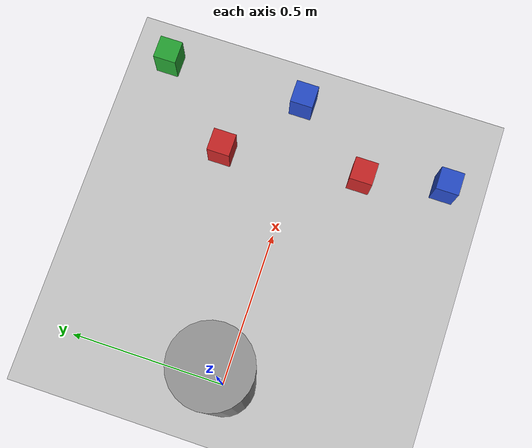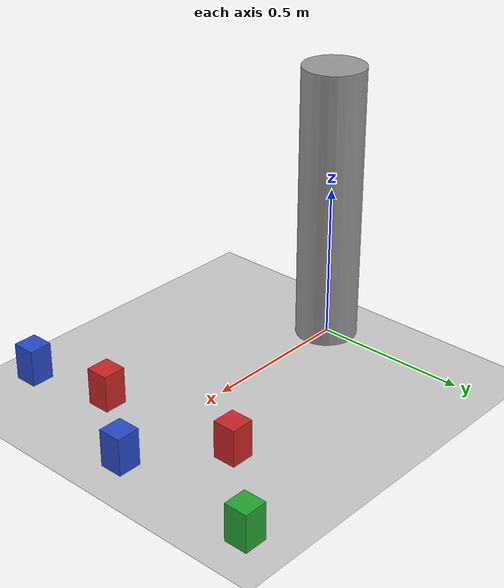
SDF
<sdf version="1.6">
 <world name="default">
  <light name="sun" type="directional">
   <pose>0 0 10 0 -0 0</pose>
   <diffuse>0.8 0.8 0.8 1</diffuse>
   <specular>0.1 0.1 0.1 1</specular>
   <attenuation>
    <range>1000</range>
    <constant>0.9</constant>
    <linear>0.01</linear>
    <quadratic>0.001</quadratic>
   </attenuation>
   <direction>-0.5 0.5 -1</direction>
  </light>
  <model name="ground_plane">
   <static>1</static>
   <link name="link">
    <collision name="collision">
     <geometry><plane><normal>0 0 1</normal><size>100 100</size></plane></geometry>
     <surface><friction><ode><mu>100</mu><mu2>50</mu2></ode></friction></surface>
    </collision>
    <visual name="visual">
     <cast_shadows>0</cast_shadows>
     <geometry><plane><normal>0 0 1</normal><size>100 100</size></plane></geometry>
     <material>
      <script><uri>file://media/materials/scripts/gazebo.material</uri><name>Gazebo/Grey</name></script>
     </material>
    </visual>
   </link>
  </model>
  <gravity>0 0 -9.8</gravity>
  <magnetic_field>6e-06 2.3e-05 -4.2e-05</magnetic_field>
  <atmosphere type="adiabatic"/>
  <physics name="default_physics" default="0" type="ode">
   <max_step_size>0.001</max_step_size>
   <real_time_factor>1</real_time_factor>
   <real_time_update_rate>1000</real_time_update_rate>
  </physics>
  <scene><ambient>0.4 0.4 0.4 1</ambient><background>0.7 0.7 0.7 1</background><shadows>1</shadows></scene>
  <spherical_coordinates>
   <surface_model>EARTH_WGS84</surface_model>
   <latitude_deg>0</latitude_deg>
   <longitude_deg>0</longitude_deg>
   <elevation>0</elevation>
   <heading_deg>0</heading_deg>
  </spherical_coordinates>
  <model name="half_cylinder_0">
   <link name="link">
    <inertial>
     <mass>1</mass>
     <inertia><ixx>0.145833</ixx><ixy>0</ixy><ixz>0</ixz><iyy>0.145833</iyy><iyz>0</iyz><izz>0.125</izz></inertia>
    </inertial>
    <visual name="visual">
     <geometry><cylinder><radius>0.1</radius><length>0.9</length></cylinder></geometry>
     <material>
      <script><name>Gazebo/Grey</name><uri>file://media/materials/scripts/gazebo.material</uri></script>
      <ambient>0.3 0.3 0.3 1</ambient>
      <diffuse>0.7 0.7 0.7 1</diffuse>
      <specular>0.01 0.01 0.01 1</specular>
      <emissive>0 0 0 1</emissive>
      <shader type="vertex"><normal_map>__default__</normal_map></shader>
     </material>
    </visual>
    <collision name="collision">
     <geometry><cylinder><radius>0.1</radius><length>0.9</length></cylinder></geometry>
     <surface>
      <friction>
       <ode><mu>1</mu><mu2>1</mu2><fdir1>0 0 0</fdir1><slip1>0</slip1><slip2>0</slip2></ode>
       <torsional>
        <coefficient>1</coefficient>
        <patch_radius>0</patch_radius>
        <surface_radius>0</surface_radius>
        <use_patch_radius>1</use_patch_radius>
        <ode><slip>0</slip></ode>
       </torsional>
      </friction>
      <bounce><restitution_coefficient>0</restitution_coefficient><threshold>1e+06</threshold></bounce>
      <contact>
       <collide_without_contact>0</collide_without_contact>
       <collide_without_contact_bitmask>1</collide_without_contact_bitmask>
       <collide_bitmask>1</collide_bitmask>
       <ode>
        <soft_cfm>0</soft_cfm>
        <soft_erp>0.2</soft_erp>
        <kp>1e+13</kp>
        <kd>1</kd>
        <max_vel>0.01</max_vel>
        <min_depth>0</min_depth>
       </ode>
       <bullet>
        <split_impulse>1</split_impulse>
        <split_impulse_penetration_threshold>-0.01</split_impulse_penetration_threshold>
        <soft_cfm>0</soft_cfm>
        <soft_erp>0.2</soft_erp>
        <kp>1e+13</kp>
        <kd>1</kd>
       </bullet>
      </contact>
     </surface>
    </collision>
   </link>
   <static>0</static>
   <pose>0.002085 -0.002914 0.45 0 -0 0.012154</pose>
  </model>
  <model name="cube_20k_red_0">
   <link name="link">
    <inertial>
     <inertia><ixx>1</ixx><ixy>0</ixy><ixz>0</ixz><iyy>1</iyy><iyz>0</iyz><izz>1</izz></inertia>
     <mass>1</mass>
    </inertial>
    <visual name="visual">
     <geometry><box><size>0.075 0.075 0.12</size></box></geometry>
     <material>
      <shader type="vertex"><normal_map>__default__</normal_map></shader>
      <ambient>0.5 0 0 1</ambient>
      <diffuse>0.5 0 0 1</diffuse>
      <specular>0.1 0.1 0.1 1</specular>
      <emissive>0 0 0 1</emissive>
      <script><name>Gazebo/Red</name><uri>__default__</uri></script>
     </material>
    </visual>
    <collision name="collision">
     <geometry><box><size>0.075 0.075 0.12</size></box></geometry>
     <surface>
      <friction>
       <ode><mu>1</mu><mu2>1</mu2><fdir1>0 0 0</fdir1><slip1>0</slip1><slip2>0</slip2></ode>
       <torsional>
        <coefficient>1</coefficient>
        <patch_radius>0</patch_radius>
        <surface_radius>0</surface_radius>
        <use_patch_radius>1</use_patch_radius>
        <ode><slip>0</slip></ode>
       </torsional>
      </friction>
      <bounce><restitution_coefficient>0</restitution_coefficient><threshold>1e+06</threshold></bounce>
      <contact>
       <collide_without_contact>0</collide_without_contact>
       <collide_without_contact_bitmask>1</collide_without_contact_bitmask>
       <collide_bitmask>1</collide_bitmask>
       <ode>
        <soft_cfm>0</soft_cfm>
        <soft_erp>0.2</soft_erp>
        <kp>1e+13</kp>
        <kd>1</kd>
        <max_vel>0.01</max_vel>
        <min_depth>0</min_depth>
       </ode>
       <bullet>
        <split_impulse>1</split_impulse>
        <split_impulse_penetration_threshold>-0.01</split_impulse_penetration_threshold>
        <soft_cfm>0</soft_cfm>
        <soft_erp>0.2</soft_erp>
        <kp>1e+13</kp>
        <kd>1</kd>
       </bullet>
      </contact>
     </surface>
    </collision>
   </link>
   <static>0</static>
   <pose>0.767938 -0.213987 0.06 -1e-06 -0 -9.7e-05</pose>
  </model>
  <model name="cube_20k_red_4">
   <link name="link">
    <inertial>
     <inertia><ixx>1</ixx><ixy>0</ixy><ixz>0</ixz><iyy>1</iyy><iyz>0</iyz><izz>1</izz></inertia>
     <mass>1</mass>
    </inertial>
    <visual name="visual">
     <geometry><box><size>0.075 0.075 0.12</size></box></geometry>
     <material>
      <shader type="vertex"><normal_map>__default__</normal_map></shader>
      <ambient>0.5 0 0 1</ambient>
      <diffuse>0.5 0 0 1</diffuse>
      <specular>0.1 0.1 0.1 1</specular>
      <emissive>0 0 0 1</emissive>
      <script><name>Gazebo/Red</name><uri>__default__</uri></script>
     </material>
    </visual>
    <collision name="collision">
     <geometry><box><size>0.075 0.075 0.12</size></box></geometry>
     <surface>
      <friction>
       <ode><mu>1</mu><mu2>1</mu2><fdir1>0 0 0</fdir1><slip1>0</slip1><slip2>0</slip2></ode>
       <torsional>
        <coefficient>1</coefficient>
        <patch_radius>0</patch_radius>
        <surface_radius>0</surface_radius>
        <use_patch_radius>1</use_patch_radius>
        <ode><slip>0</slip></ode>
       </torsional>
      </friction>
      <bounce><restitution_coefficient>0</restitution_coefficient><threshold>1e+06</threshold></bounce>
      <contact>
       <collide_without_contact>0</collide_without_contact>
       <collide_without_contact_bitmask>1</collide_without_contact_bitmask>
       <collide_bitmask>1</collide_bitmask>
       <ode>
        <soft_cfm>0</soft_cfm>
        <soft_erp>0.2</soft_erp>
        <kp>1e+13</kp>
        <kd>1</kd>
        <max_vel>0.01</max_vel>
        <min_depth>0</min_depth>
       </ode>
       <bullet>
        <split_impulse>1</split_impulse>
        <split_impulse_penetration_threshold>-0.01</split_impulse_penetration_threshold>
        <soft_cfm>0</soft_cfm>
        <soft_erp>0.2</soft_erp>
        <kp>1e+13</kp>
        <kd>1</kd>
       </bullet>
      </contact>
     </surface>
    </collision>
   </link>
   <static>0</static>
   <pose>0.715639 0.24474 0.060001 1.2e-05 7e-06 -0.000112</pose>
  </model>
  <model name="cube_20k_blue">
   <link name="link">
    <inertial>
     <inertia><ixx>1</ixx><ixy>0</ixy><ixz>0</ixz><iyy>1</iyy><iyz>0</iyz><izz>1</izz></inertia>
     <mass>1</mass>
    </inertial>
    <visual name="visual">
     <geometry><box><size>0.075 0.075 0.12</size></box></geometry>
     <material>
      <shader type="vertex"><normal_map>__default__</normal_map></shader>
      <ambient>0 0 0.7 1</ambient>
      <diffuse>0 0 0.7 1</diffuse>
      <specular>0.1 0.1 0.1 1</specular>
      <emissive>0 0 0 1</emissive>
      <script><name>Gazebo/Blue</name><uri>__default__</uri></script>
     </material>
    </visual>
    <collision name="collision">
     <geometry><box><size>0.075 0.075 0.12</size></box></geometry>
     <surface>
      <friction>
       <ode><mu>1</mu><mu2>1</mu2><fdir1>0 0 0</fdir1><slip1>0</slip1><slip2>0</slip2></ode>
       <torsional>
        <coefficient>1</coefficient>
        <patch_radius>0</patch_radius>
        <surface_radius>0</surface_radius>
        <use_patch_radius>1</use_patch_radius>
        <ode><slip>0</slip></ode>
       </torsional>
      </friction>
      <bounce><restitution_coefficient>0</restitution_coefficient><threshold>1e+06</threshold></bounce>
      <contact>
       <collide_without_contact>0</collide_without_contact>
       <collide_without_contact_bitmask>1</collide_without_contact_bitmask>
       <collide_bitmask>1</collide_bitmask>
       <ode>
        <soft_cfm>0</soft_cfm>
        <soft_erp>0.2</soft_erp>
        <kp>1e+13</kp>
        <kd>1</kd>
        <max_vel>0.01</max_vel>
        <min_depth>0</min_depth>
       </ode>
       <bullet>
        <split_impulse>1</split_impulse>
        <split_impulse_penetration_threshold>-0.01</split_impulse_penetration_threshold>
        <soft_cfm>0</soft_cfm>
        <soft_erp>0.2</soft_erp>
        <kp>1e+13</kp>
        <kd>1</kd>
       </bullet>
      </contact>
     </surface>
    </collision>
   </link>
   <static>0</static>
   <pose>0.822333 -0.481524 0.060003 7.5e-05 -3e-06 -0.000103</pose>
  </model>
  <model name="cube_20k_blue_0">
   <link name="link">
    <inertial>
     <inertia><ixx>1</ixx><ixy>0</ixy><ixz>0</ixz><iyy>1</iyy><iyz>0</iyz><izz>1</izz></inertia>
     <mass>1</mass>
    </inertial>
    <visual name="visual">
     <geometry><box><size>0.075 0.075 0.12</size></box></geometry>
     <material>
      <shader type="vertex"><normal_map>__default__</normal_map></shader>
      <ambient>0 0 0.7 1</ambient>
      <diffuse>0 0 0.7 1</diffuse>
      <specular>0.1 0.1 0.1 1</specular>
      <emissive>0 0 0 1</emissive>
      <script><name>Gazebo/Blue</name><uri>__default__</uri></script>
     </material>
    </visual>
    <collision name="collision">
     <geometry><box><size>0.075 0.075 0.12</size></box></geometry>
     <surface>
      <friction>
       <ode><mu>1</mu><mu2>1</mu2><fdir1>0 0 0</fdir1><slip1>0</slip1><slip2>0</slip2></ode>
       <torsional>
        <coefficient>1</coefficient>
        <patch_radius>0</patch_radius>
        <surface_radius>0</surface_radius>
        <use_patch_radius>1</use_patch_radius>
        <ode><slip>0</slip></ode>
       </torsional>
      </friction>
      <bounce><restitution_coefficient>0</restitution_coefficient><threshold>1e+06</threshold></bounce>
      <contact>
       <collide_without_contact>0</collide_without_contact>
       <collide_without_contact_bitmask>1</collide_without_contact_bitmask>
       <collide_bitmask>1</collide_bitmask>
       <ode>
        <soft_cfm>0</soft_cfm>
        <soft_erp>0.2</soft_erp>
        <kp>1e+13</kp>
        <kd>1</kd>
        <max_vel>0.01</max_vel>
        <min_depth>0</min_depth>
       </ode>
       <bullet>
        <split_impulse>1</split_impulse>
        <split_impulse_penetration_threshold>-0.01</split_impulse_penetration_threshold>
        <soft_cfm>0</soft_cfm>
        <soft_erp>0.2</soft_erp>
        <kp>1e+13</kp>
        <kd>1</kd>
       </bullet>
      </contact>
     </surface>
    </collision>
   </link>
   <static>0</static>
   <pose>0.953559 0.04284 0.06 -3e-06 2e-06 -0.000107</pose>
  </model>
  <model name="cube_20k_green_0">
   <link name="link">
    <inertial>
     <inertia><ixx>1</ixx><ixy>0</ixy><ixz>0</ixz><iyy>1</iyy><iyz>0</iyz><izz>1</izz></inertia>
     <mass>1</mass>
    </inertial>
    <visual name="visual">
     <geometry><box><size>0.075 0.075 0.12</size></box></geometry>
     <material>
      <shader type="vertex"><normal_map>__default__</normal_map></shader>
      <ambient>0 0.3 0 1</ambient>
      <diffuse>0 0.3 0 1</diffuse>
      <specular>0.1 0.1 0.1 1</specular>
      <emissive>0 0 0 1</emissive>
      <script><name>Gazebo/Green</name><uri>__default__</uri></script>
     </material>
    </visual>
    <collision name="collision">
     <geometry><box><size>0.075 0.075 0.12</size></box></geometry>
     <surface>
      <friction>
       <ode><mu>1</mu><mu2>1</mu2><fdir1>0 0 0</fdir1><slip1>0</slip1><slip2>0</slip2></ode>
       <torsional>
        <coefficient>1</coefficient>
        <patch_radius>0</patch_radius>
        <surface_radius>0</surface_radius>
        <use_patch_radius>1</use_patch_radius>
        <ode><slip>0</slip></ode>
       </torsional>
      </friction>
      <bounce><restitution_coefficient>0</restitution_coefficient><threshold>1e+06</threshold></bounce>
      <contact>
       <collide_without_contact>0</collide_without_contact>
       <collide_without_contact_bitmask>1</collide_without_contact_bitmask>
       <collide_bitmask>1</collide_bitmask>
       <ode>
        <soft_cfm>0</soft_cfm>
        <soft_erp>0.2</soft_erp>
        <kp>1e+13</kp>
        <kd>1</kd>
        <max_vel>0.01</max_vel>
        <min_depth>0</min_depth>
       </ode>
       <bullet>
        <split_impulse>1</split_impulse>
        <split_impulse_penetration_threshold>-0.01</split_impulse_penetration_threshold>
        <soft_cfm>0</soft_cfm>
        <soft_erp>0.2</soft_erp>
        <kp>1e+13</kp>
        <kd>1</kd>
       </bullet>
      </contact>
     </surface>
    </collision>
   </link>
   <static>0</static>
   <pose>0.959296 0.51249 0.060001 -1e-05 -1.4e-05 -0.000103</pose>
  </model>
 </world>
</sdf>
